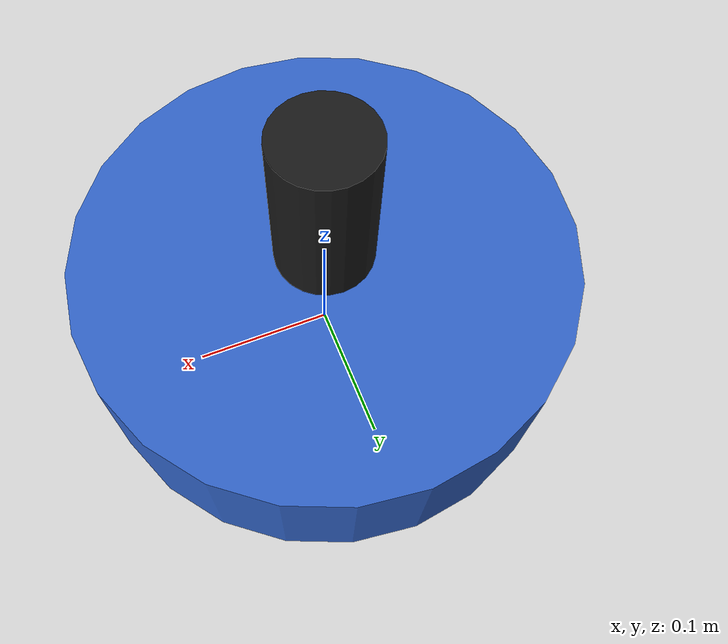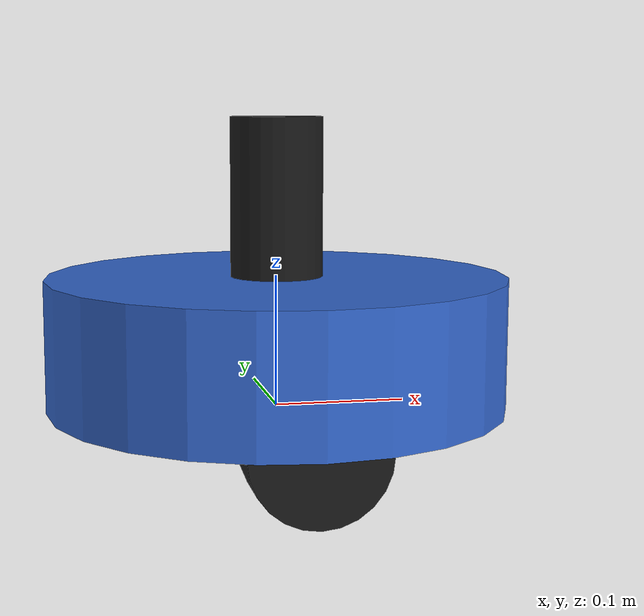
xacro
<?xml version="1.0"?>
<robot name="diff_drive_robot" xmlns:xacro="http://www.ros.org/wiki/xacro">

  <!-- ── Parameters ──────────────────────────────────────────────────────── -->
  <xacro:property name="base_radius"  value="0.175"/>
  <xacro:property name="base_height"  value="0.10"/>
  <xacro:property name="wheel_radius" value="0.05"/>
  <xacro:property name="wheel_width"  value="0.04"/>
  <xacro:property name="wheel_sep"    value="0.28"/>
  <xacro:property name="lidar_height" value="0.12"/>

  <!-- ── Materials ───────────────────────────────────────────────────────── -->
  <material name="grey"><color rgba="0.5 0.5 0.5 1"/></material>
  <material name="black"><color rgba="0.1 0.1 0.1 1"/></material>
  <material name="blue"><color rgba="0.2 0.4 0.8 1"/></material>

  <!-- ── base_footprint ──────────────────────────────────────────────────── -->
  <link name="base_footprint"/>

  <joint name="base_joint" type="fixed">
    <parent link="base_footprint"/>
    <child  link="base_link"/>
    <origin xyz="0 0 ${wheel_radius}" rpy="0 0 0"/>
  </joint>

  <!-- ── base_link ───────────────────────────────────────────────────────── -->
  <link name="base_link">
    <visual>
      <geometry><cylinder radius="${base_radius}" length="${base_height}"/></geometry>
      <material name="blue"/>
    </visual>
    <collision>
      <geometry><cylinder radius="${base_radius}" length="${base_height}"/></geometry>
    </collision>
    <inertial>
      <mass value="5.0"/>
      <inertia ixx="0.1" ixy="0" ixz="0" iyy="0.1" iyz="0" izz="0.18"/>
    </inertial>
  </link>

  <!-- ── Left wheel ──────────────────────────────────────────────────────── -->
  <joint name="left_wheel_joint" type="continuous">
    <parent link="base_link"/>
    <child  link="left_wheel"/>
    <origin xyz="0 ${wheel_sep/2} ${-base_height/2}" rpy="${-pi/2} 0 0"/>
    <axis xyz="0 0 1"/>
  </joint>

  <link name="left_wheel">
    <visual>
      <geometry><cylinder radius="${wheel_radius}" length="${wheel_width}"/></geometry>
      <material name="black"/>
    </visual>
    <collision>
      <geometry><cylinder radius="${wheel_radius}" length="${wheel_width}"/></geometry>
    </collision>
    <inertial>
      <mass value="0.5"/>
      <inertia ixx="0.001" ixy="0" ixz="0" iyy="0.001" iyz="0" izz="0.001"/>
    </inertial>
  </link>

  <!-- ── Right wheel ─────────────────────────────────────────────────────── -->
  <joint name="right_wheel_joint" type="continuous">
    <parent link="base_link"/>
    <child  link="right_wheel"/>
    <origin xyz="0 ${-wheel_sep/2} ${-base_height/2}" rpy="${-pi/2} 0 0"/>
    <axis xyz="0 0 1"/>
  </joint>

  <link name="right_wheel">
    <visual>
      <geometry><cylinder radius="${wheel_radius}" length="${wheel_width}"/></geometry>
      <material name="black"/>
    </visual>
    <collision>
      <geometry><cylinder radius="${wheel_radius}" length="${wheel_width}"/></geometry>
    </collision>
    <inertial>
      <mass value="0.5"/>
      <inertia ixx="0.001" ixy="0" ixz="0" iyy="0.001" iyz="0" izz="0.001"/>
    </inertial>
  </link>

  <!-- ── Caster (passive) ────────────────────────────────────────────────── -->
  <joint name="caster_joint" type="fixed">
    <parent link="base_link"/>
    <child  link="caster_link"/>
    <origin xyz="${base_radius*0.6} 0 ${-base_height/2}" rpy="0 0 0"/>
  </joint>

  <link name="caster_link">
    <visual>
      <geometry><sphere radius="${wheel_radius*0.6}"/></geometry>
      <material name="grey"/>
    </visual>
    <collision>
      <geometry><sphere radius="${wheel_radius*0.6}"/></geometry>
    </collision>
    <inertial>
      <mass value="0.1"/>
      <inertia ixx="0.0001" ixy="0" ixz="0" iyy="0.0001" iyz="0" izz="0.0001"/>
    </inertial>
  </link>

  <!-- ── LiDAR ───────────────────────────────────────────────────────────── -->
  <joint name="lidar_joint" type="fixed">
    <parent link="base_link"/>
    <child  link="lidar_link"/>
    <origin xyz="0 0 ${base_height/2 + lidar_height/2}" rpy="0 0 0"/>
  </joint>

  <link name="lidar_link">
    <visual>
      <geometry><cylinder radius="0.035" length="${lidar_height}"/></geometry>
      <material name="black"/>
    </visual>
    <collision>
      <geometry><cylinder radius="0.035" length="${lidar_height}"/></geometry>
    </collision>
    <inertial>
      <mass value="0.2"/>
      <inertia ixx="0.0001" ixy="0" ixz="0" iyy="0.0001" iyz="0" izz="0.0001"/>
    </inertial>
  </link>

  <!-- ── Gazebo differential drive plugin ────────────────────────────────── -->
  <gazebo>
    <plugin name="diff_drive" filename="libgazebo_ros_diff_drive.so">
      <left_joint>left_wheel_joint</left_joint>
      <right_joint>right_wheel_joint</right_joint>
      <wheel_separation>${wheel_sep}</wheel_separation>
      <wheel_diameter>${2*wheel_radius}</wheel_diameter>
      <max_wheel_torque>20</max_wheel_torque>
      <max_wheel_acceleration>2.0</max_wheel_acceleration>
      <command_topic>cmd_vel</command_topic>
      <publish_odom>true</publish_odom>
      <publish_odom_tf>false</publish_odom_tf>
      <odometry_topic>odom</odometry_topic>
      <odometry_frame>odom</odometry_frame>
      <robot_base_frame>base_link</robot_base_frame>
    </plugin>
  </gazebo>

  <!-- ── Gazebo LiDAR sensor ─────────────────────────────────────────────── -->
  <gazebo reference="lidar_link">
    <sensor name="lidar" type="ray">
      <always_on>true</always_on>
      <update_rate>10</update_rate>
      <ray>
        <scan>
          <horizontal>
            <samples>360</samples>
            <resolution>1</resolution>
            <min_angle>-3.14159</min_angle>
            <max_angle>3.14159</max_angle>
          </horizontal>
        </scan>
        <range>
          <min>0.12</min>
          <max>5.0</max>
          <resolution>0.01</resolution>
        </range>
        <noise>
          <type>gaussian</type>
          <mean>0.0</mean>
          <stddev>0.01</stddev>
        </noise>
      </ray>
      <plugin name="lidar_plugin" filename="libgazebo_ros_ray_sensor.so">
        <ros><remapping>~/out:=scan</remapping></ros>
        <output_type>sensor_msgs/LaserScan</output_type>
        <frame_name>lidar_link</frame_name>
      </plugin>
    </sensor>
  </gazebo>

</robot>
